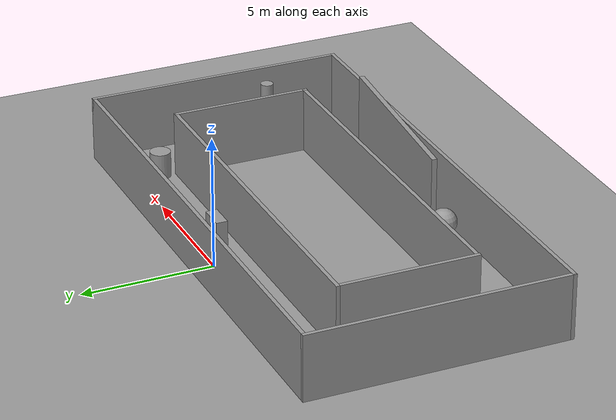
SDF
<sdf version="1.6">
 <world name="default">
  <light name="sun" type="directional">
   <pose>0 0 10 0 -0 0</pose>
   <diffuse>0.8 0.8 0.8 1</diffuse>
   <specular>0.2 0.2 0.2 1</specular>
   <attenuation>
    <range>1000</range>
    <constant>0.9</constant>
    <linear>0.01</linear>
    <quadratic>0.001</quadratic>
   </attenuation>
   <direction>0.5 0.1 -0.9</direction>
  </light>
  <scene><ambient>0.4 0.4 0.4 1</ambient><background>0.7 0.7 0.7 1</background><shadows>1</shadows></scene>
  <physics name="default_physics" default="0" type="ode">
   <max_step_size>0.01</max_step_size>
   <real_time_factor>1</real_time_factor>
   <real_time_update_rate>100</real_time_update_rate>
  </physics>
  <model name="ground_plane_0">
   <static>1</static>
   <link name="link">
    <collision name="collision">
     <geometry><plane><normal>0 0 1</normal><size>100 100</size></plane></geometry>
     <surface><friction><ode><mu>100</mu><mu2>50</mu2></ode></friction></surface>
    </collision>
    <visual name="visual">
     <cast_shadows>0</cast_shadows>
     <geometry><plane><normal>0 0 1</normal><size>100 100</size></plane></geometry>
     <material>
      <script><uri>file://media/materials/scripts/gazebo.material</uri><name>Gazebo/Grey</name></script>
     </material>
    </visual>
    <velocity_decay><linear>0</linear><angular>0</angular></velocity_decay>
   </link>
   <pose>0.497681 0 0 0 -0 0</pose>
  </model>
  <gravity>0 0 -9.8</gravity>
  <magnetic_field>6e-06 2.3e-05 -4.2e-05</magnetic_field>
  <atmosphere type="adiabatic"/>
  <spherical_coordinates>
   <surface_model>EARTH_WGS84</surface_model>
   <latitude_deg>0</latitude_deg>
   <longitude_deg>0</longitude_deg>
   <elevation>0</elevation>
   <heading_deg>0</heading_deg>
  </spherical_coordinates>
  <model name="track1">
   <pose>0.094377 -4.12894 0 0 -0 0</pose>
   <link name="Wall_1">
    <collision name="Wall_1_Collision">
     <geometry><box><size>19.5 0.15 2.5</size></box></geometry>
     <pose>0 0 1.25 0 -0 0</pose>
    </collision>
    <visual name="Wall_1_Visual">
     <pose>0 0 1.25 0 -0 0</pose>
     <geometry><box><size>19.5 0.15 2.5</size></box></geometry>
     <material>
      <script><uri>file://media/materials/scripts/gazebo.material</uri><name>Gazebo/Grey</name></script>
      <ambient>1 1 1 1</ambient>
     </material>
    </visual>
    <pose>0 4.925 0 0 -0 0</pose>
   </link>
   <link name="Wall_2">
    <collision name="Wall_2_Collision">
     <geometry><box><size>10 0.15 2.5</size></box></geometry>
     <pose>0 0 1.25 0 -0 0</pose>
    </collision>
    <visual name="Wall_2_Visual">
     <pose>0 0 1.25 0 -0 0</pose>
     <geometry><box><size>10 0.15 2.5</size></box></geometry>
     <material>
      <script><uri>file://media/materials/scripts/gazebo.material</uri><name>Gazebo/Grey</name></script>
      <ambient>1 1 1 1</ambient>
     </material>
    </visual>
    <pose>9.675 0 0 0 0 -1.5708</pose>
   </link>
   <link name="Wall_3">
    <collision name="Wall_3_Collision">
     <geometry><box><size>19.5 0.15 2.5</size></box></geometry>
     <pose>0 0 1.25 0 -0 0</pose>
    </collision>
    <visual name="Wall_3_Visual">
     <pose>0 0 1.25 0 -0 0</pose>
     <geometry><box><size>19.5 0.15 2.5</size></box></geometry>
     <material>
      <script><uri>file://media/materials/scripts/gazebo.material</uri><name>Gazebo/Grey</name></script>
      <ambient>1 1 1 1</ambient>
     </material>
    </visual>
    <pose>0 -4.925 0 0 -0 3.14159</pose>
   </link>
   <link name="Wall_4">
    <collision name="Wall_4_Collision">
     <geometry><box><size>10 0.15 2.5</size></box></geometry>
     <pose>0 0 1.25 0 -0 0</pose>
    </collision>
    <visual name="Wall_4_Visual">
     <pose>0 0 1.25 0 -0 0</pose>
     <geometry><box><size>10 0.15 2.5</size></box></geometry>
     <material>
      <script><uri>file://media/materials/scripts/gazebo.material</uri><name>Gazebo/Grey</name></script>
      <ambient>1 1 1 1</ambient>
     </material>
    </visual>
    <pose>-9.675 0 0 0 -0 1.5708</pose>
   </link>
   <link name="Wall_6">
    <collision name="Wall_6_Collision">
     <geometry><box><size>5.3616 0.15 2.5</size></box></geometry>
     <pose>0 0 1.25 0 -0 0</pose>
    </collision>
    <visual name="Wall_6_Visual">
     <pose>0 0 1.25 0 -0 0</pose>
     <geometry><box><size>5.3616 0.15 2.5</size></box></geometry>
     <material>
      <script><uri>file://media/materials/scripts/gazebo.material</uri><name>Gazebo/Grey</name></script>
      <ambient>1 1 1 1</ambient>
     </material>
    </visual>
    <pose>-7.17458 -0.021615 0 0 0 -1.5708</pose>
   </link>
   <link name="Wall_7">
    <collision name="Wall_7_Collision">
     <geometry><box><size>14.5 0.15 2.5</size></box></geometry>
     <pose>0 0 1.25 0 -0 0</pose>
    </collision>
    <visual name="Wall_7_Visual">
     <pose>0 0 1.25 0 -0 0</pose>
     <geometry><box><size>14.5 0.15 2.5</size></box></geometry>
     <material>
      <script><uri>file://media/materials/scripts/gazebo.material</uri><name>Gazebo/Grey</name></script>
      <ambient>1 1 1 1</ambient>
     </material>
    </visual>
    <pose>0.000419 -2.60081 0 0 -0 0</pose>
   </link>
   <link name="Wall_8">
    <collision name="Wall_8_Collision">
     <geometry><box><size>5.3616 0.15 2.5</size></box></geometry>
     <pose>0 0 1.25 0 -0 0</pose>
    </collision>
    <visual name="Wall_8_Visual">
     <pose>0 0 1.25 0 -0 0</pose>
     <geometry><box><size>5.3616 0.15 2.5</size></box></geometry>
     <material>
      <script><uri>file://media/materials/scripts/gazebo.material</uri><name>Gazebo/Grey</name></script>
      <ambient>1 1 1 1</ambient>
     </material>
    </visual>
    <pose>7.17542 -0.021615 0 0 -0 1.5708</pose>
   </link>
   <link name="Wall_9">
    <collision name="Wall_9_Collision">
     <geometry><box><size>14.5 0.15 2.5</size></box></geometry>
     <pose>0 0 1.25 0 -0 0</pose>
    </collision>
    <visual name="Wall_9_Visual">
     <pose>0 0 1.25 0 -0 0</pose>
     <geometry><box><size>14.5 0.15 2.5</size></box></geometry>
     <material>
      <script><uri>file://media/materials/scripts/gazebo.material</uri><name>Gazebo/Grey</name></script>
      <ambient>1 1 1 1</ambient>
     </material>
    </visual>
    <pose>0.000419 2.61078 0 0 -0 3.14159</pose>
   </link>
   <static>1</static>
  </model>
  <model name="unit_cylinder_0">
   <pose>7.43512 -0.898152 0.49912 0 -0 0.004794</pose>
   <link name="link">
    <inertial>
     <mass>1</mass>
     <inertia><ixx>0.145833</ixx><ixy>0</ixy><ixz>0</ixz><iyy>0.145833</iyy><iyz>0</iyz><izz>0.125</izz></inertia>
    </inertial>
    <collision name="collision">
     <geometry><cylinder><radius>0.397753</radius><length>1</length></cylinder></geometry>
    </collision>
    <visual name="visual">
     <geometry><cylinder><radius>0.397753</radius><length>1</length></cylinder></geometry>
     <material>
      <script><name>Gazebo/Grey</name><uri>file://media/materials/scripts/gazebo.material</uri></script>
     </material>
    </visual>
   </link>
  </model>
  <model name="unit_box_0">
   <pose>1.73276 -0.824845 0.499123 1.4e-05 -0 -4e-06</pose>
   <link name="link">
    <inertial>
     <mass>1</mass>
     <inertia>
      <ixx>0.166667</ixx>
      <ixy>0</ixy>
      <ixz>0</ixz>
      <iyy>0.166667</iyy>
      <iyz>0</iyz>
      <izz>0.166667</izz>
     </inertia>
    </inertial>
    <collision name="collision"><geometry><box><size>1 0.441095 1</size></box></geometry></collision>
    <visual name="visual">
     <geometry><box><size>1 0.441095 1</size></box></geometry>
     <material>
      <script><name>Gazebo/Grey</name><uri>file://media/materials/scripts/gazebo.material</uri></script>
     </material>
    </visual>
   </link>
  </model>
  <model name="unit_box_0_clone">
   <pose>4.54962 0.148666 0.499633 -0.000271 -0.000615 0.474296</pose>
   <link name="link">
    <inertial>
     <mass>1</mass>
     <inertia>
      <ixx>0.166667</ixx>
      <ixy>0</ixy>
      <ixz>0</ixz>
      <iyy>0.166667</iyy>
      <iyz>0</iyz>
      <izz>0.166667</izz>
     </inertia>
    </inertial>
    <collision name="collision"><geometry><box><size>1 0.441095 1</size></box></geometry></collision>
    <visual name="visual">
     <geometry><box><size>1 0.441095 1</size></box></geometry>
     <material>
      <script><name>Gazebo/Grey</name><uri>file://media/materials/scripts/gazebo.material</uri></script>
     </material>
    </visual>
   </link>
  </model>
  <model name="unit_cylinder_0_clone">
   <pose>8.59356 -5.75729 1.1902 -2e-06 0 -0.000882</pose>
   <link name="link">
    <inertial>
     <mass>1</mass>
     <inertia><ixx>0.145833</ixx><ixy>0</ixy><ixz>0</ixz><iyy>0.145833</iyy><iyz>0</iyz><izz>0.125</izz></inertia>
    </inertial>
    <collision name="collision">
     <geometry><cylinder><radius>0.240037</radius><length>2.38039</length></cylinder></geometry>
    </collision>
    <visual name="visual">
     <geometry><cylinder><radius>0.240037</radius><length>2.38039</length></cylinder></geometry>
     <material>
      <script><name>Gazebo/Grey</name><uri>file://media/materials/scripts/gazebo.material</uri></script>
     </material>
    </visual>
   </link>
  </model>
  <model name="grey_wall">
   <static>1</static>
   <link name="link">
    <pose>0 0 1.4 0 -0 0</pose>
    <collision name="collision"><geometry><box><size>7.5 0.2 2.8</size></box></geometry></collision>
    <visual name="visual">
     <cast_shadows>0</cast_shadows>
     <geometry><box><size>7.5 0.2 2.8</size></box></geometry>
     <material>
      <script>
       <uri>model://grey_wall/materials/scripts</uri>
       <uri>model://grey_wall/materials/textures</uri>
       <name>vrc/grey_wall</name>
      </script>
     </material>
    </visual>
   </link>
   <pose>3.14547 -8.62441 0 0 0 -0.08281</pose>
  </model>
  <model name="unit_sphere_0">
   <pose>-1.10875 -8.47321 0.5 -0.014389 0 0</pose>
   <link name="link">
    <inertial>
     <mass>1</mass>
     <inertia><ixx>0.1</ixx><ixy>0</ixy><ixz>0</ixz><iyy>0.1</iyy><iyz>0</iyz><izz>0.1</izz></inertia>
    </inertial>
    <collision name="collision"><geometry><sphere><radius>0.5</radius></sphere></geometry></collision>
    <visual name="visual">
     <geometry><sphere><radius>0.5</radius></sphere></geometry>
     <material>
      <script><name>Gazebo/Grey</name><uri>file://media/materials/scripts/gazebo.material</uri></script>
     </material>
    </visual>
   </link>
  </model>
 </world>
</sdf>
